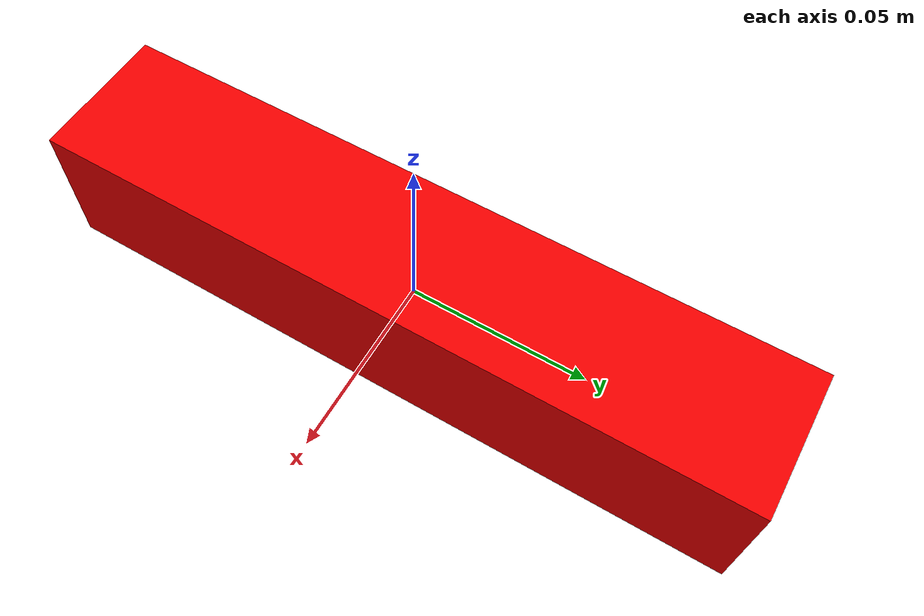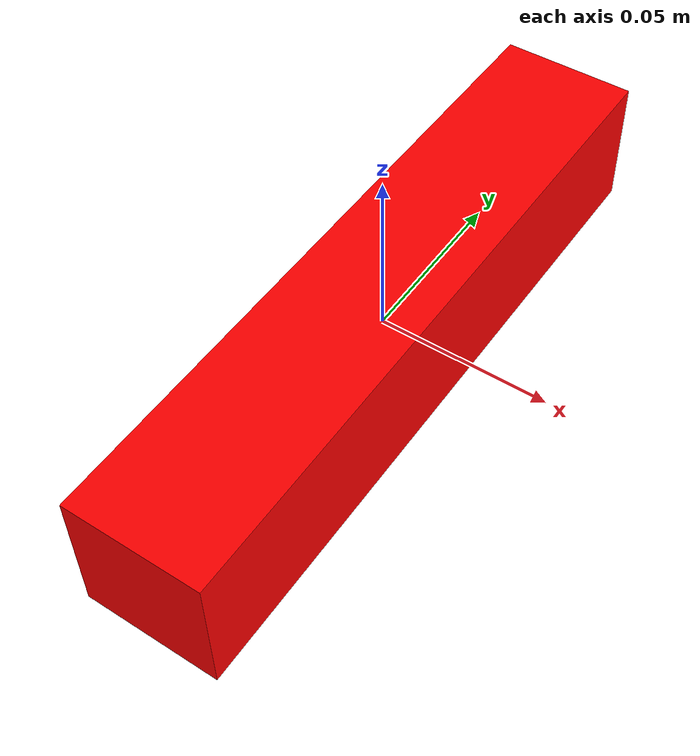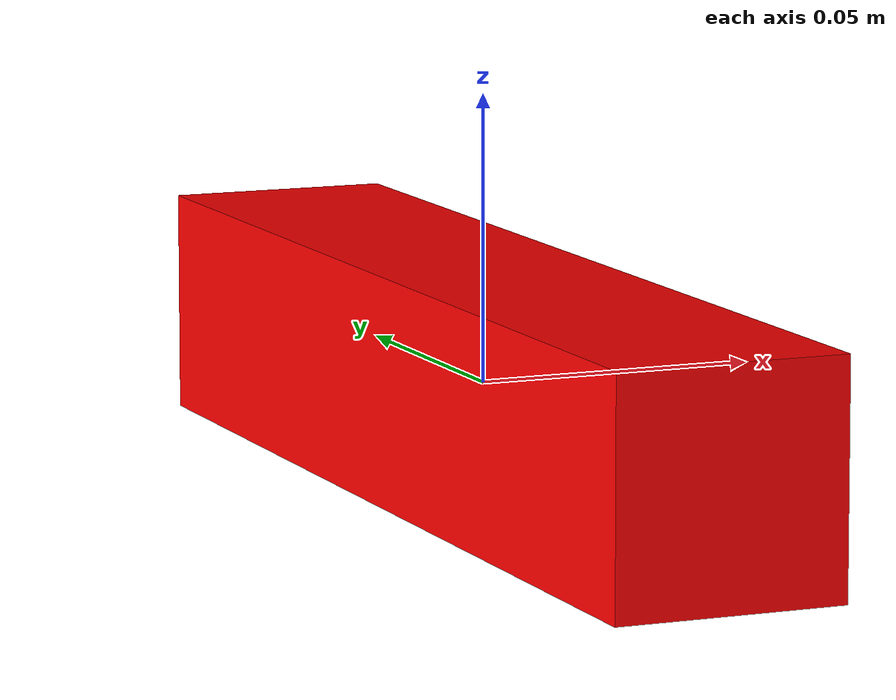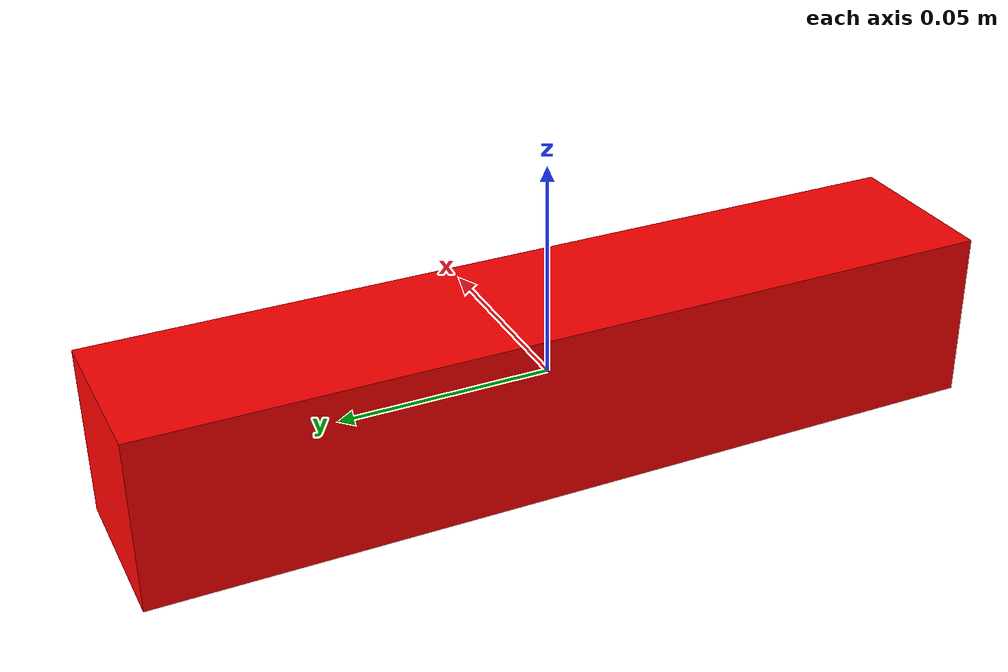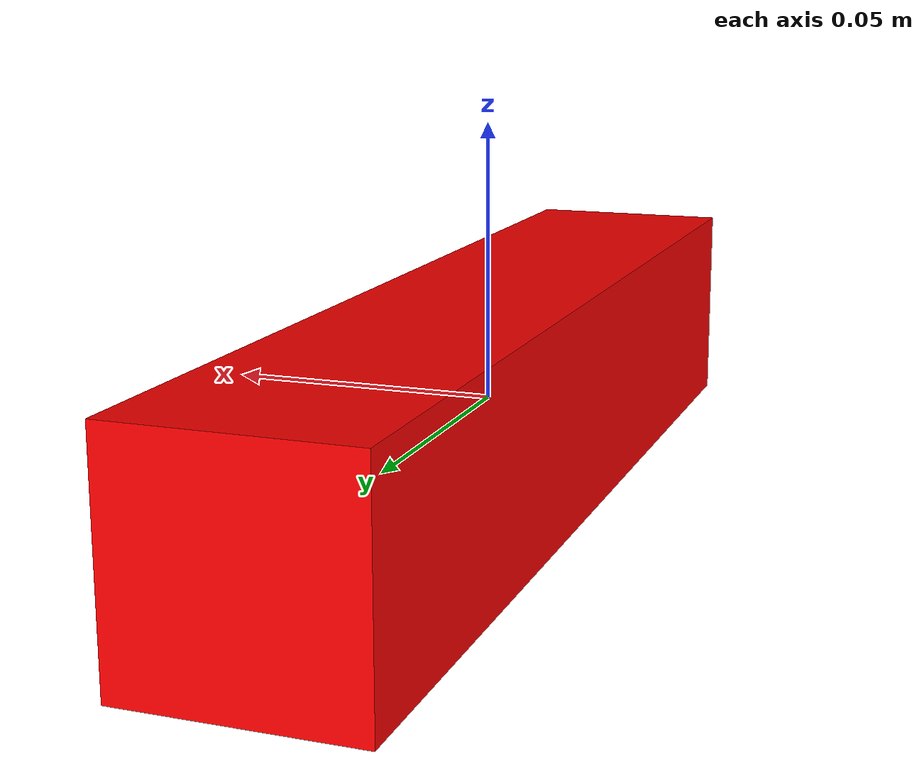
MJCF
<?xml version="1.0"?>
<mujoco model="cube">
  <compiler angle="radian" meshdir="assets" texturedir="assets" autolimits="true"/>
  <default>
    <default class="cube">
      <material specular="0.5" shininess="0.25"/>
    </default>
  </default>
  <worldbody>
    <body name="cube" childclass="cube">
      <geom name="mesh" type="box" size="0.02 0.1 0.02" mass="3" density="1500" friction="1.5 0.1 0.01" solimp="0.95 0.99 0.001" solref="0.005 1" rgba="1 0 0 1" condim="3"/>
    </body>
  </worldbody>
</mujoco>
